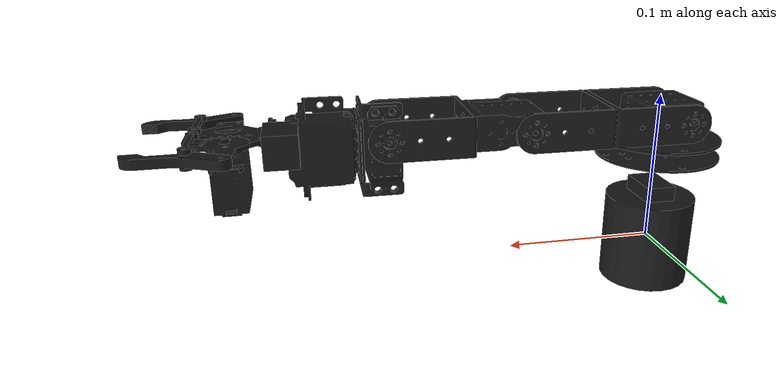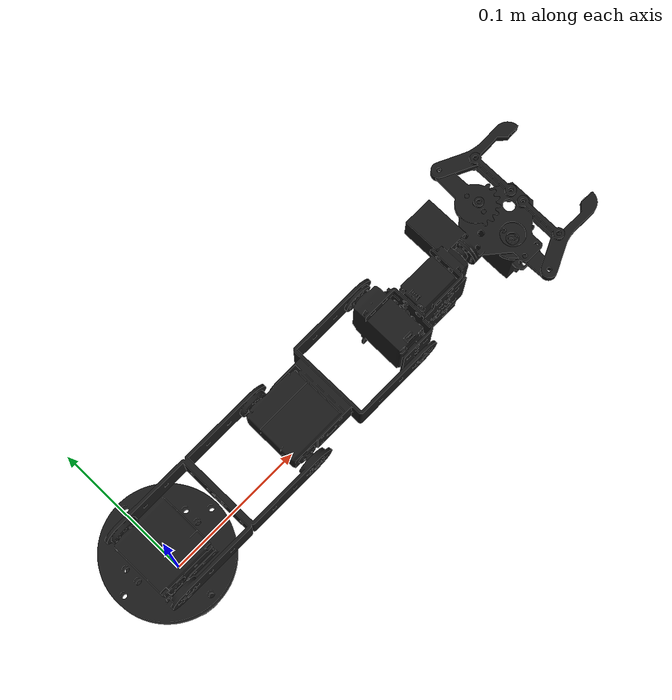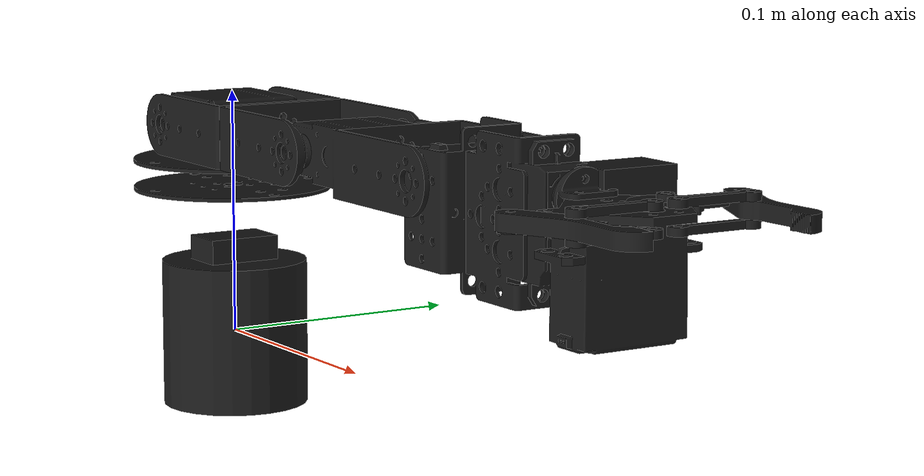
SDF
<?xml version="1.0"?>
<sdf version="1.9">
  <model name="learm">
    <link name="arm_base_link">
      <self_collide>0</self_collide>
      <inertial>
        <pose>0 0 0 0 0 0</pose>
        <mass>0.034268493</mass>
        <inertia>
          <ixx>1.7991E-05</ixx>
          <ixy>0</ixy>
          <ixz>0</ixz>
          <iyy>1.7991E-05</iyy>
          <iyz>0</iyz>
          <izz>1.54208E-05</izz>
        </inertia>
      </inertial>
      <collision name="arm_base_link_collision">
        <pose>0 0 0 0 0 0</pose>
        <geometry>
          <cylinder>
            <radius>0.03</radius>
            <length>0.06</length>
          </cylinder>
        </geometry>
      </collision>
      <visual name="arm_base_link_visual">
        <pose>0 0 0 0 0 0</pose>
        <geometry>
          <cylinder>
            <radius>0.03</radius><length>0.06</length>
          </cylinder>
        </geometry>
        <material>
          <ambient>0.1 0.1 0.1</ambient>
          <diffuse>0.1 0.1 0.1</diffuse>
          <specular>0.01 0.01 0.01 1.0</specular>
        </material>
      </visual>
    </link>

    <link name="camera_link">
      <pose relative_to="camera_base_joint">0 0 0 0 0 0</pose>
      <inertial>
        <pose>0 0 0 0 0 0</pose>
        <mass>0.01212</mass>
        <inertia>
          <ixx>0.000001313</ixx>
          <ixy>0</ixy>
          <ixz>0</ixz>
          <iyy>0.000000808</iyy>
          <iyz>0</iyz>
          <izz>0.000001313</izz>
        </inertia>
      </inertial>
      <visual name="camera_link_visual">
        <pose>0 0 0 0 0 0</pose>
        <geometry>
          <box>
            <size>0.02 0.03 0.02</size>
          </box>
        </geometry>
        <material>
          <ambient>0.1 0.1 0.1</ambient>
          <diffuse>0.1 0.1 0.1</diffuse>
          <specular>0.01 0.01 0.01 1.0</specular>
        </material>
      </visual>
      <sensor name="camera_base" type="camera">
        <camera>
          <horizontal_fov>1.0472</horizontal_fov>
          <image>
            <width>320</width>
            <height>240</height>
          </image>
          <clip>
            <near>0.05</near>
            <far>100</far>
          </clip>
        </camera>
        <always_on>true</always_on>
        <update_rate>10</update_rate>
      </sensor>
    </link>
    <joint name="camera_base_joint" type="fixed">
      <pose relative_to="arm_base_link">0 0 0.03 0 0 0</pose>
      <parent>arm_base_link</parent>
      <child>camera_link</child>
    </joint>

    <link name="shoulder_link">
      <self_collide>0</self_collide>
      <pose relative_to="shoulder_pan">0 0 0 0 0 0</pose>
      <inertial>
        <pose>0 0 0 0 0 0</pose>
        <mass>0.02424</mass>
        <inertia>
          <ixx>0.00000505</ixx>
          <ixy>0</ixy>
          <ixz>0</ixz>
          <iyy>0.00000505</iyy>
          <iyz>0</iyz>
          <izz>0.000006464</izz>
        </inertia>
      </inertial>
      <collision name="shoulder_link_collision">
        <pose>0 0 0 0 0 0</pose>
        <geometry>
          <box>
            <size>0.04 0.04 0.03</size>
          </box>
        </geometry>
      </collision>
      <visual name="shoulder_link_visual">
        <pose>0 0 0 0 0 0</pose>
        <geometry>
          <mesh>
            <scale>1 1 1</scale>
            <uri>package://ardupilot_gz_description/models/learm/meshes/shoulder.stl</uri>
          </mesh>
        </geometry>
        <material>
          <ambient>0.1 0.1 0.1</ambient>
          <diffuse>0.1 0.1 0.1</diffuse>
          <specular>0.01 0.01 0.01 1.0</specular>
        </material>
      </visual>
    </link>
    <joint name="shoulder_pan" type="revolute">
      <pose relative_to="arm_base_link">0 0 0.059 0 0 0</pose>
      <parent>arm_base_link</parent>
      <child>shoulder_link</child>
      <axis>
        <xyz>0 0 1</xyz>
        <limit>
          <lower>-1.57</lower>
          <upper>1.57</upper>
        </limit>
        <dynamics>
          <damping>0.01</damping>
        </dynamics>
      </axis>
    </joint>

    <link name="humerus_link">
      <self_collide>0</self_collide>
      <pose relative_to="shoulder_lift">0 0 0 0 0 0</pose>
      <inertial>
        <pose>0 0 0.03 0 0 0</pose>
        <mass>0.019831304</mass>
        <inertia>
          <ixx>2.23515E-05</ixx>
          <ixy>0</ixy>
          <ixz>0</ixz>
          <iyy>1.92529E-05</iyy>
          <iyz>0</iyz>
          <izz>5.1644E-06</izz>
        </inertia>
      </inertial>
      <collision name="humerus_link_collision">
        <pose>0 0 0.03 0 0 0</pose>
        <geometry>
          <box>
            <size>0.025 0.05 0.105</size>
          </box>
        </geometry>
      </collision>
      <visual name="humerus_link_visual">
        <pose>0 0 0 0 0 0</pose>
        <geometry>
          <mesh>
            <scale>1 1 1</scale>
            <uri>package://ardupilot_gz_description/models/learm/meshes/humerus.stl</uri>
          </mesh>
        </geometry>
        <material>
          <ambient>0.1 0.1 0.1</ambient>
          <diffuse>0.1 0.1 0.1</diffuse>
          <specular>0.01 0.01 0.01 1.0</specular>
        </material>
      </visual>
    </link>
    <joint name="shoulder_lift" type="revolute">
      <pose relative_to="shoulder_link" degrees="true">-0.01 0 0.028 0 90 0</pose>
      <parent>shoulder_link</parent>
      <child>humerus_link</child>
      <axis>
        <xyz>0 1 0</xyz>
        <limit>
          <lower>-3.142</lower>
          <upper>0.0</upper>
        </limit>
        <dynamics>
          <damping>0.01</damping>
        </dynamics>
      </axis>
    </joint>

    <link name="forearm_link">
      <self_collide>0</self_collide>
      <pose relative_to="elbow">0 0 0 0 0 0</pose>
      <inertial>
        <pose>0 0 0.01 0 0 0</pose>
        <mass>0.039662607</mass>
        <inertia>
          <ixx>1.35514E-05</ixx>
          <ixy>0</ixy>
          <ixz>0</ixz>
          <iyy>1.03288E-05</iyy>
          <iyz>0</iyz>
          <izz>7.35411E-06</izz>
        </inertia>
      </inertial>
      <collision name="forearm_link_collision">
        <pose>0 0 0.01 0 0 0</pose>
        <geometry>
          <box>
            <size>0.025 0.04 0.05</size>
          </box>
        </geometry>
      </collision>
      <visual name="forearm_link_visual">
        <pose>0 0 0 0 0 0</pose>
        <geometry>
          <mesh>
            <scale>1 1 1</scale>
            <uri>package://ardupilot_gz_description/models/learm/meshes/forearm.stl</uri>
          </mesh>
        </geometry>
        <material>
          <ambient>0.1 0.1 0.1</ambient>
          <diffuse>0.1 0.1 0.1</diffuse>
          <specular>0.01 0.01 0.01 1.0</specular>
        </material>
      </visual>
    </link>
    <joint name="elbow" type="revolute">
      <pose relative_to="humerus_link">0 0 0.105 0 0 0</pose>
      <parent>humerus_link</parent>
      <child>forearm_link</child>
      <axis>
        <xyz>0 -1 0</xyz>
        <limit>
          <lower>-1.57</lower>
          <upper>1.57</upper>
        </limit>
        <dynamics>
          <damping>0.04</damping>
        </dynamics>
      </axis>
    </joint>

    <link name="wrist_link">
      <self_collide>0</self_collide>
      <pose relative_to="wrist_flex">0 0 0 0 0 0</pose>
      <inertial>
        <pose>0.01 0 0.02 0 0 0</pose>
        <mass>0.07272</mass>
        <inertia>
          <ixx>0.00002727</ixx>
          <ixy>0</ixy>
          <ixz>0</ixz>
          <iyy>0.000031512</iyy>
          <iyz>0</iyz>
          <izz>0.00001515</izz>
        </inertia>
      </inertial>
      <collision name="wrist_link_collision">
        <pose>0.01 0 0.02 0 0 0</pose>
        <geometry>
          <box>
            <size>0.04 0.03 0.06</size>
          </box>
        </geometry>
      </collision>
      <visual name="wrist_link_visual">
        <pose>0 0 0 0 0 0</pose>
        <geometry>
          <mesh>
            <scale>1 1 1</scale>
            <uri>package://ardupilot_gz_description/models/learm/meshes/wrist.stl</uri>
          </mesh>
        </geometry>
        <material>
          <ambient>0.1 0.1 0.1</ambient>
          <diffuse>0.1 0.1 0.1</diffuse>
          <specular>0.01 0.01 0.01 1.0</specular>
        </material>
      </visual>
    </link>
    <joint name="wrist_flex" type="revolute">
      <pose relative_to="forearm_link">0 0 0.09 0 0 0</pose>
      <parent>forearm_link</parent>
      <child>wrist_link</child>
      <axis>
        <xyz>0 -1 0</xyz>
        <limit>
          <lower>-1.57</lower>
          <upper>1.57</upper>
        </limit>
        <dynamics>
          <damping>0.04</damping>
        </dynamics>
      </axis>
    </joint>

    <link name="hand_link">
      <self_collide>0</self_collide>
      <pose relative_to="wrist_roll">0 0 0 0 0 0</pose>
      <inertial>
        <pose>0.02 0 0.03 0 0 0</pose>
        <mass>0.06464</mass>
        <inertia>
          <ixx>1.72373E-05</ixx>
          <ixy>0</ixy>
          <ixz>0</ixz>
          <iyy>1.72373E-05</iyy>
          <iyz>0</iyz>
          <izz>1.72373E-05</izz>
        </inertia>
      </inertial>
      <collision name="hand_link_collision">
        <pose>0.02 0 0.03 0 0 0</pose>
        <geometry>
          <box>
            <size>0.04 0.04 0.04</size>
          </box>
        </geometry>
      </collision>
      <visual name="hand_link_visual">
        <pose>0 0 0 0 0 0</pose>
        <geometry>
          <mesh>
            <scale>1 1 1</scale>
            <uri>package://ardupilot_gz_description/models/learm/meshes/hand.stl</uri>
          </mesh>
        </geometry>
        <material>
          <ambient>0.1 0.1 0.1</ambient>
          <diffuse>0.1 0.1 0.1</diffuse>
          <specular>0.01 0.01 0.01 1.0</specular>
        </material>
      </visual>
    </link>
    <joint name="wrist_roll" type="revolute">
      <pose relative_to="wrist_link">0 0 0.06 0 0 0</pose>
      <parent>wrist_link</parent>
      <child>hand_link</child>
      <axis>
        <xyz>0 0 1</xyz>
        <limit>
          <lower>-1.57</lower>
          <upper>1.57</upper>
        </limit>
        <dynamics>
          <damping>0.04</damping>
        </dynamics>
      </axis>
    </joint>

    <link name="camera_wrist_link">
      <pose relative_to="camera_wrist_joint">0 0 0 0 0 0</pose>
      <inertial>
        <pose>0 0 0 0 0 0</pose>
        <mass>0.01212</mass>
        <inertia>
          <ixx>0.000001313</ixx>
          <ixy>0</ixy>
          <ixz>0</ixz>
          <iyy>0.000000808</iyy>
          <iyz>0</iyz>
          <izz>0.000001313</izz>
        </inertia>
      </inertial>
      <visual name="camera_wrist_link_visual">
        <pose>0 0 0 0 0 0</pose>
        <geometry>
          <box>
            <size>0.02 0.03 0.02</size>
          </box>
        </geometry>
        <material>
          <ambient>0.1 0.1 0.1</ambient>
          <diffuse>0.1 0.1 0.1</diffuse>
          <specular>0.01 0.01 0.01 1.0</specular>
        </material>
      </visual>
      <sensor name="camera_wrist" type="camera">
        <camera>
          <horizontal_fov>1.0472</horizontal_fov>
          <image>
            <width>320</width>
            <height>240</height>
          </image>
          <clip>
            <near>0.05</near>
            <far>100</far>
          </clip>
        </camera>
        <always_on>true</always_on>
        <update_rate>10</update_rate>
      </sensor>
    </link>
    <joint name="camera_wrist_joint" type="fixed">
      <pose relative_to="hand_link">0 0.02 0 0 0 0</pose>
      <parent>hand_link</parent>
      <child>camera_wrist_link</child>
    </joint>

    <link name="grip_left_link">
      <self_collide>0</self_collide>
      <pose relative_to="grip_left">0 0 0 0 0 0</pose>
      <inertial>
        <pose>0 0 0.01 0 0 0</pose>
        <mass>0.0037875</mass>
        <inertia>
          <ixx>8.60078E-07</ixx>
          <ixy>0</ixy>
          <ixz>0</ixz>
          <iyy>7.96953E-07</iyy>
          <iyz>0</iyz>
          <izz>7.89063E-08</izz>
        </inertia>
      </inertial>
      <collision name="grip_left_link_collision">
        <pose>0 0 0.01 0 0 0</pose>
        <geometry>
          <box>
            <size>0.005 0.015 0.05</size>
          </box>
        </geometry>
      </collision>
      <visual name="grip_left_link_visual">
        <pose>0 0 0 0 0 0</pose>
        <geometry>
          <mesh>
            <scale>1 1 1</scale>
            <uri>package://ardupilot_gz_description/models/learm/meshes/carpal-left.stl</uri>
          </mesh>
        </geometry>
        <material>
          <ambient>0.1 0.1 0.1</ambient>
          <diffuse>0.1 0.1 0.1</diffuse>
          <specular>0.01 0.01 0.01 1.0</specular>
        </material>
      </visual>
    </link>
    <joint name="grip_left" type="revolute">
      <pose relative_to="hand_link">0 0.015 0.03 -1.57 0 0</pose>
      <parent>hand_link</parent>
      <child>grip_left_link</child>
      <axis>
        <xyz>1 0 0</xyz>
        <limit>
          <lower>0</lower>
          <upper>1.57</upper>
        </limit>
        <dynamics>
          <damping>0.01</damping>
        </dynamics>
      </axis>
    </joint>

    <link name="finger_left_link">
      <self_collide>0</self_collide>
      <pose relative_to="finger_left">0 0 0 0 0 0</pose>
      <inertial>
        <pose>0 -0.01 0.025 0 0 0</pose>
        <mass>0.00303</mass>
        <inertia>
          <ixx>9.3425E-07</ixx>
          <ixy>0</ixy>
          <ixz>0</ixz>
          <iyy>9.15313E-07</iyy>
          <iyz>0</iyz>
          <izz>3.15625E-08</izz>
        </inertia>
      </inertial>
      <collision name="finger_left_link_collision">
        <pose>0 -0.01 0.025 0 0 0</pose>
        <geometry>
          <box>
            <size>0.005 0.01 0.06</size>
          </box>
        </geometry>
      </collision>
      <visual name="finger_left_link_visual">
        <pose>0 0 0 0 0 0</pose>
        <geometry>
          <mesh>
            <scale>1 1 1</scale>
            <uri>package://ardupilot_gz_description/models/learm/meshes/finger.stl</uri>
          </mesh>
        </geometry>
        <material>
          <ambient>0.1 0.1 0.1</ambient>
          <diffuse>0.1 0.1 0.1</diffuse>
          <specular>0.01 0.01 0.01 1.0</specular>
        </material>
      </visual>
    </link>
    <joint name="finger_left" type="revolute">
      <pose relative_to="grip_left_link">0 0 0.03 1.57 0 0</pose>
      <parent>grip_left_link</parent>
      <child>finger_left_link</child>
      <axis>
        <xyz>-1 0 0</xyz>
        <dynamics>
          <damping>0.01</damping>
        </dynamics>
      </axis>
    </joint>

    <link name="grip_right_link">
      <self_collide>0</self_collide>
      <pose relative_to="grip_right">0 0 0 0 0 0</pose>
      <inertial>
        <pose>0 0 0.01 0 0 0</pose>
        <mass>0.0037875</mass>
        <inertia>
          <ixx>8.60078E-07</ixx>
          <ixy>0</ixy>
          <ixz>0</ixz>
          <iyy>7.96953E-07</iyy>
          <iyz>0</iyz>
          <izz>7.89063E-08</izz>
        </inertia>
      </inertial>
      <collision name="grip_right_link_collision">
        <pose>0 0 0.01 0 0 0</pose>
        <geometry>
          <box>
            <size>0.005 0.015 0.05</size>
          </box>
        </geometry>
      </collision>
      <visual name="grip_right_link_visual">
        <pose>0 0 0 0 0 0</pose>
        <geometry>
          <mesh>
            <scale>1 1 1</scale>
            <uri>package://ardupilot_gz_description/models/learm/meshes/carpal-right.stl</uri>
          </mesh>
        </geometry>
        <material>
          <ambient>0.1 0.1 0.1</ambient>
          <diffuse>0.1 0.1 0.1</diffuse>
          <specular>0.01 0.01 0.01 1.0</specular>
        </material>
      </visual>
    </link>
    <joint name="grip_right" type="revolute">
      <pose relative_to="hand_link">0 -0.015 0.03 1.57 0 0</pose>
      <parent>hand_link</parent>
      <child>grip_right_link</child>
      <axis>
        <xyz>-1 0 0</xyz>
        <limit>
          <lower>0</lower>
          <upper>1.57</upper>
        </limit>
        <dynamics>
          <damping>0.01</damping>
        </dynamics>
      </axis>
    </joint>

    <link name="finger_right_link">
      <self_collide>0</self_collide>
      <pose relative_to="finger_right">0 0 0 0 0 0</pose>
      <inertial>
        <pose>0 0.01 0.025 0 0 0</pose>
        <mass>0.00303</mass>
        <inertia>
          <ixx>9.3425E-07</ixx>
          <ixy>0</ixy>
          <ixz>0</ixz>
          <iyy>9.15313E-07</iyy>
          <iyz>0</iyz>
          <izz>3.15625E-08</izz>
        </inertia>
      </inertial>
      <collision name="finger_right_link_collision">
        <pose>0 0.01 0.025 0 0 3.1415899999999999</pose>
        <geometry>
          <box>
            <size>0.005 0.01 0.06</size>
          </box>
        </geometry>
      </collision>
      <visual name="finger_right_link_visual">
        <pose>0 0 0 0 0 3.1415899999999999</pose>
        <geometry>
          <mesh>
            <scale>1 1 1</scale>
            <uri>package://ardupilot_gz_description/models/learm/meshes/finger.stl</uri>
          </mesh>
        </geometry>
        <material>
          <ambient>0.1 0.1 0.1</ambient>
          <diffuse>0.1 0.1 0.1</diffuse>
          <specular>0.01 0.01 0.01 1.0</specular>
        </material>
      </visual>
    </link>
    <joint name="finger_right" type="revolute">
      <pose relative_to="grip_right_link">0 0 0.03 -1.57 0 0</pose>
      <parent>grip_right_link</parent>
      <child>finger_right_link</child>
      <axis>
        <xyz>1 0 0</xyz>
        <dynamics>
          <damping>0.01</damping>
        </dynamics>
      </axis>
    </joint>

    <link name="tendon_left_link">
      <self_collide>0</self_collide>
      <pose relative_to="tendon_left">0 0 0 0 0 0</pose>
      <inertial>
        <pose>0 0 0.02 0 0 0</pose>
        <mass>0.00202</mass>
        <inertia>
          <ixx>2.86167E-07</ixx>
          <ixy>0</ixy>
          <ixz>0</ixz>
          <iyy>2.73542E-07</iyy>
          <iyz>0</iyz>
          <izz>2.10417E-08</izz>
        </inertia>
      </inertial>
      <collision name="tendon_left_link_collision">
        <pose>0 0 0.02 0 0 0</pose>
        <geometry>
          <box>
            <size>0.005 0.01 0.04</size>
          </box>
        </geometry>
      </collision>
      <visual name="tendon_left_link_visual">
        <pose>0 0 0 0 0 0</pose>
        <geometry>
          <mesh>
            <scale>1 1 1</scale>
            <uri>package://ardupilot_gz_description/models/learm/meshes/tendon.stl</uri>
          </mesh>
        </geometry>
        <material>
          <ambient>0.1 0.1 0.1</ambient>
          <diffuse>0.1 0.1 0.1</diffuse>
          <specular>0.01 0.01 0.01 1.0</specular>
        </material>
      </visual>
    </link>
    <joint name="tendon_left" type="revolute">
      <pose relative_to="hand_link">0 0.005 0.05 -1.57 0 0</pose>
      <parent>hand_link</parent>
      <child>tendon_left_link</child>
      <axis>
        <xyz>1 0 0</xyz>
        <dynamics>
          <damping>0.01</damping>
        </dynamics>
      </axis>
    </joint>

    <link name="tendon_right_link">
      <self_collide>0</self_collide>
      <pose relative_to="tendon_right">0 0 0 0 0 0</pose>
      <inertial>
        <pose>0 0 0.02 0 0 0</pose>
        <mass>0.00202</mass>
        <inertia>
          <ixx>2.86167E-07</ixx>
          <ixy>0</ixy>
          <ixz>0</ixz>
          <iyy>2.73542E-07</iyy>
          <iyz>0</iyz>
          <izz>2.10417E-08</izz>
        </inertia>
      </inertial>
      <collision name="tendon_right_link_collision">
        <pose>0 0 0.02 0 0 0</pose>
        <geometry>
          <box>
            <size>0.005 0.01 0.04</size>
          </box>
        </geometry>
      </collision>
      <visual name="tendon_right_link_visual">
        <pose>0 0 0 0 0 0</pose>
        <geometry>
          <mesh>
            <scale>1 1 1</scale>
            <uri>package://ardupilot_gz_description/models/learm/meshes/tendon.stl</uri>
          </mesh>
        </geometry>
        <material>
          <ambient>0.1 0.1 0.1</ambient>
          <diffuse>0.1 0.1 0.1</diffuse>
          <specular>0.01 0.01 0.01 1.0</specular>
        </material>
      </visual>
    </link>
    <joint name="tendon_right" type="revolute">
      <pose relative_to="hand_link">0 -0.005 0.05 1.57 0 0</pose>
      <parent>hand_link</parent>
      <child>tendon_right_link</child>
      <axis>
        <xyz>-1 0 0</xyz>
        <dynamics>
          <damping>0.01</damping>
        </dynamics>
      </axis>
    </joint>

    <!-- Links and detachable joint plugins to close kinematic chains in gripper -->

    <plugin filename="gz-sim-joint-state-publisher-system"
      name="gz::sim::systems::JointStatePublisher">
    </plugin>

    <plugin filename="gz-sim-joint-position-controller-system"
        name="gz::sim::systems::JointPositionController">
      <joint_name>shoulder_pan</joint_name>
      <topic>/learm/shoulder_pan/cmd_pos</topic>
      <initial_position>0.0</initial_position>
      <p_gain>1</p_gain>
      <i_gain>0.0</i_gain>
      <d_gain>0.1</d_gain>
      <i_max>1</i_max>
      <i_min>-1</i_min>
      <cmd_max>10</cmd_max>
      <cmd_min>-10</cmd_min>
    </plugin>

    <plugin filename="gz-sim-joint-position-controller-system"
        name="gz::sim::systems::JointPositionController">
      <joint_name>shoulder_lift</joint_name>
      <topic>/learm/shoulder_lift/cmd_pos</topic>
      <initial_position>-0.3</initial_position>
      <p_gain>1</p_gain>
      <i_gain>0.0</i_gain>
      <d_gain>0.1</d_gain>
      <i_max>1</i_max>
      <i_min>-1</i_min>
      <cmd_max>10</cmd_max>
      <cmd_min>-10</cmd_min>
    </plugin>

    <plugin filename="gz-sim-joint-position-controller-system"
        name="gz::sim::systems::JointPositionController">
      <joint_name>elbow</joint_name>
      <topic>/learm/elbow/cmd_pos</topic>
      <initial_position>-1.57</initial_position>
      <p_gain>1</p_gain>
      <i_gain>0.0</i_gain>
      <d_gain>0.01</d_gain>
      <i_max>1</i_max>
      <i_min>-1</i_min>
      <cmd_max>10</cmd_max>
      <cmd_min>-10</cmd_min>
    </plugin>

    <plugin filename="gz-sim-joint-position-controller-system"
        name="gz::sim::systems::JointPositionController">
      <joint_name>wrist_flex</joint_name>
      <topic>/learm/wrist_flex/cmd_pos</topic>
      <initial_position>1.57</initial_position>
      <p_gain>1</p_gain>
      <i_gain>0.0</i_gain>
      <d_gain>0.01</d_gain>
      <i_max>1</i_max>
      <i_min>-1</i_min>
      <cmd_max>10</cmd_max>
      <cmd_min>-10</cmd_min>
    </plugin>

    <plugin filename="gz-sim-joint-position-controller-system"
        name="gz::sim::systems::JointPositionController">
      <joint_name>wrist_roll</joint_name>
      <topic>/learm/wrist_roll/cmd_pos</topic>
      <initial_position>0.0</initial_position>
      <p_gain>1</p_gain>
      <i_gain>0.0</i_gain>
      <d_gain>0.01</d_gain>
      <i_max>1</i_max>
      <i_min>-1</i_min>
      <cmd_max>10</cmd_max>
      <cmd_min>-10</cmd_min>
    </plugin>

    <plugin filename="gz-sim-joint-position-controller-system"
        name="gz::sim::systems::JointPositionController">
      <joint_name>grip_left</joint_name>
      <topic>/learm/grip/cmd_pos</topic>
      <initial_position>0.0</initial_position>
      <p_gain>1</p_gain>
      <i_gain>0.0</i_gain>
      <d_gain>0.0</d_gain>
      <i_max>1</i_max>
      <i_min>-1</i_min>
      <cmd_max>10</cmd_max>
      <cmd_min>-10</cmd_min>
    </plugin>

    <plugin filename="gz-sim-joint-position-controller-system"
        name="gz::sim::systems::JointPositionController">
      <joint_name>grip_right</joint_name>
      <topic>/learm/grip/cmd_pos</topic>
      <initial_position>0.0</initial_position>
      <p_gain>1</p_gain>
      <i_gain>0.0</i_gain>
      <d_gain>0.0</d_gain>
      <i_max>1</i_max>
      <i_min>-1</i_min>
      <cmd_max>10</cmd_max>
      <cmd_min>-10</cmd_min>
    </plugin>

    <plugin filename="gz-sim-joint-position-controller-system"
        name="gz::sim::systems::JointPositionController">
      <joint_name>finger_left</joint_name>
      <topic>/learm/grip/cmd_pos</topic>
      <initial_position>0.0</initial_position>
      <p_gain>1</p_gain>
      <i_gain>0.0</i_gain>
      <d_gain>0.0</d_gain>
      <i_max>1</i_max>
      <i_min>-1</i_min>
      <cmd_max>10</cmd_max>
      <cmd_min>-10</cmd_min>
    </plugin>

    <plugin filename="gz-sim-joint-position-controller-system"
        name="gz::sim::systems::JointPositionController">
      <joint_name>finger_right</joint_name>
      <topic>/learm/grip/cmd_pos</topic>
      <initial_position>0.0</initial_position>
      <p_gain>1</p_gain>
      <i_gain>0.0</i_gain>
      <d_gain>0.0</d_gain>
      <i_max>1</i_max>
      <i_min>-1</i_min>
      <cmd_max>10</cmd_max>
      <cmd_min>-10</cmd_min>
    </plugin>

    <plugin filename="gz-sim-joint-position-controller-system"
        name="gz::sim::systems::JointPositionController">
      <joint_name>tendon_left</joint_name>
      <topic>/learm/grip/cmd_pos</topic>
      <initial_position>0.0</initial_position>
      <p_gain>1</p_gain>
      <i_gain>0.0</i_gain>
      <d_gain>0.0</d_gain>
      <i_max>1</i_max>
      <i_min>-1</i_min>
      <cmd_max>10</cmd_max>
      <cmd_min>-10</cmd_min>
    </plugin>

    <plugin filename="gz-sim-joint-position-controller-system"
        name="gz::sim::systems::JointPositionController">
      <joint_name>tendon_right</joint_name>
      <topic>/learm/grip/cmd_pos</topic>
      <initial_position>0.0</initial_position>
      <p_gain>1</p_gain>
      <i_gain>0.0</i_gain>
      <d_gain>0.0</d_gain>
      <i_max>1</i_max>
      <i_min>-1</i_min>
      <cmd_max>10</cmd_max>
      <cmd_min>-10</cmd_min>
    </plugin>

  </model>
</sdf>
